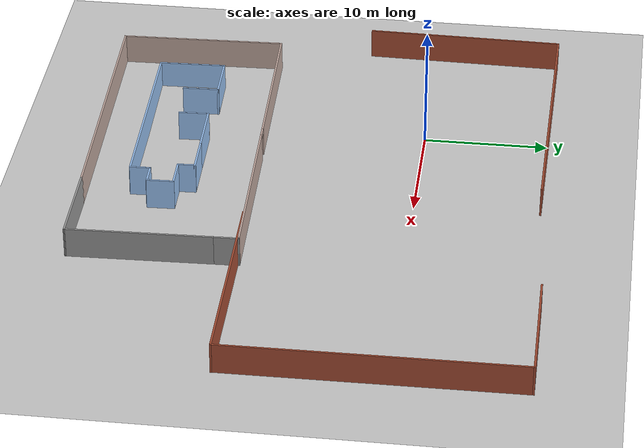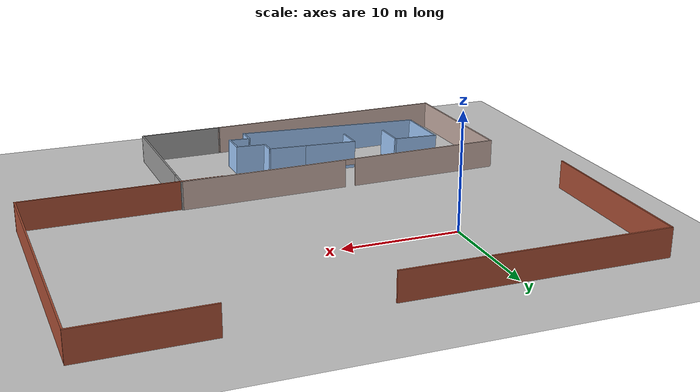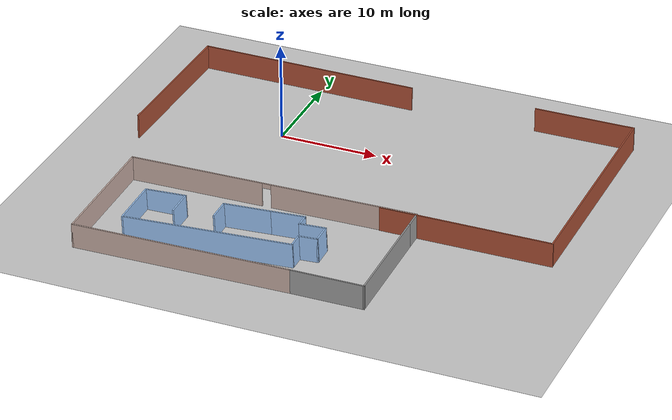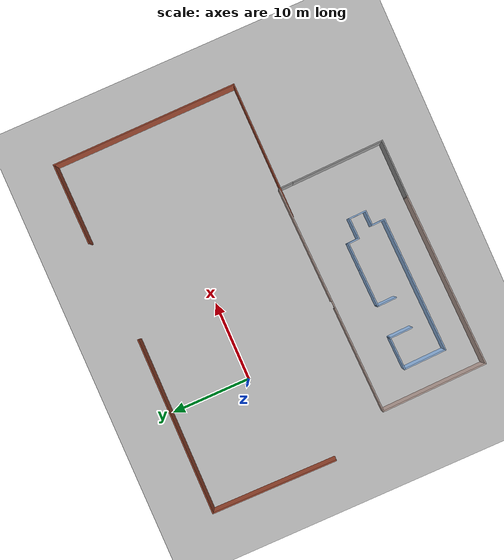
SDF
<sdf version="1.7">
 <world name="default">
  <light name="sun" type="directional">
   <pose>0 0 10 0 -0 0</pose>
   <diffuse>0.8 0.8 0.8 1</diffuse>
   <specular>0.2 0.2 0.2 1</specular>
   <attenuation>
    <range>1000</range>
    <constant>0.9</constant>
    <linear>0.01</linear>
    <quadratic>0.001</quadratic>
   </attenuation>
   <direction>-0.5 0.1 -0.9</direction>
   <spot><inner_angle>0</inner_angle><outer_angle>0</outer_angle><falloff>0</falloff></spot>
  </light>
  <model name="ground_plane">
   <static>1</static>
   <link name="link">
    <collision name="collision">
     <geometry><plane><normal>0 0 1</normal><size>100 100</size></plane></geometry>
     <surface><friction><ode><mu>100</mu><mu2>50</mu2></ode></friction></surface>
    </collision>
    <visual name="visual">
     <cast_shadows>0</cast_shadows>
     <geometry><plane><normal>0 0 1</normal><size>100 100</size></plane></geometry>
     <material>
      <script><uri>file://media/materials/scripts/gazebo.material</uri><name>Gazebo/Grey</name></script>
     </material>
    </visual>
   </link>
  </model>
  <gravity>0 0 -9.8</gravity>
  <magnetic_field>6e-06 2.3e-05 -4.2e-05</magnetic_field>
  <atmosphere type="adiabatic"/>
  <physics type="ode">
   <max_step_size>0.001</max_step_size>
   <real_time_factor>1</real_time_factor>
   <real_time_update_rate>1000</real_time_update_rate>
  </physics>
  <scene><ambient>0.4 0.4 0.4 1</ambient><background>0.7 0.7 0.7 1</background><shadows>1</shadows></scene>
  <audio><device>default</device></audio>
  <spherical_coordinates>
   <surface_model>EARTH_WGS84</surface_model>
   <latitude_deg>0</latitude_deg>
   <longitude_deg>0</longitude_deg>
   <elevation>0</elevation>
   <heading_deg>0</heading_deg>
  </spherical_coordinates>
  <model name="border2">
   <pose>-5.97404 2.17635 -3e-06 -5.3e-05 0.007672 1.56383</pose>
   <link name="Wall_44">
    <collision name="Wall_44_Collision">
     <geometry><box><size>16 0.15 2.5</size></box></geometry>
     <pose>0 0 1.25 0 -0 0</pose>
    </collision>
    <visual name="Wall_44_Visual">
     <pose>0 0 1.25 0 -0 0</pose>
     <geometry><box><size>16 0.15 2.5</size></box></geometry>
     <material>
      <script><uri>file://media/materials/scripts/gazebo.material</uri><name>Gazebo/Bricks</name></script>
      <ambient>1 1 1 1</ambient>
     </material>
     <meta><layer>0</layer></meta>
    </visual>
    <pose>-1e-06 6.74922 0 0 -0 0</pose>
   </link>
   <link name="Wall_46">
    <collision name="Wall_46_Collision">
     <geometry><box><size>22.5 0.15 2.5</size></box></geometry>
     <pose>0 0 1.25 0 -0 0</pose>
    </collision>
    <visual name="Wall_46_Visual">
     <pose>0 0 1.25 0 -0 0</pose>
     <geometry><box><size>22.5 0.15 2.5</size></box></geometry>
     <material>
      <script><uri>file://media/materials/scripts/gazebo.material</uri><name>Gazebo/Bricks</name></script>
      <ambient>1 1 1 1</ambient>
     </material>
     <meta><layer>0</layer></meta>
    </visual>
    <pose>7.925 -4.42578 0 0 -0 -1.5708</pose>
   </link>
   <static>1</static>
  </model>
  <model name="border6">
   <pose>4.94819 -19.5671 3e-06 -0.002183 -0.001014 -3.1186</pose>
   <link name="Wall_58">
    <collision name="Wall_58_Collision">
     <geometry><box><size>22 0.15 2.5</size></box></geometry>
     <pose>0 0 1.25 0 -0 0</pose>
    </collision>
    <visual name="Wall_58_Visual">
     <pose>0 0 1.25 0 -0 0</pose>
     <geometry><box><size>22 0.15 2.5</size></box></geometry>
     <material>
      <script><uri>file://media/materials/scripts/gazebo.material</uri><name>Gazebo/Grey</name></script>
      <ambient>0.760784 0.662745 0.627451 1</ambient>
     </material>
     <meta><layer>0</layer></meta>
    </visual>
    <pose>3.62551 6.62449 0 0 -0 0</pose>
   </link>
   <link name="Wall_59">
    <collision name="Wall_59_Collision">
     <geometry><box><size>13.5 0.15 2.5</size></box></geometry>
     <pose>0 0 1.25 0 -0 0</pose>
    </collision>
    <visual name="Wall_59_Visual">
     <pose>0 0 1.25 0 -0 0</pose>
     <geometry><box><size>13.5 0.15 2.5</size></box></geometry>
     <material>
      <script><uri>file://media/materials/scripts/gazebo.material</uri><name>Gazebo/Grey</name></script>
      <ambient>0.760784 0.662745 0.627451 1</ambient>
     </material>
     <meta><layer>0</layer></meta>
    </visual>
    <pose>14.5505 -0.050513 0 0 -0 -1.5708</pose>
   </link>
   <link name="Wall_60">
    <pose>0.000514 -6.72551 0 0 -0 3.14159</pose>
    <visual name="Wall_60_Visual_0">
     <pose>-7.843 0 1.25 0 -0 0</pose>
     <geometry><box><size>13.564 0.15 2.5</size></box></geometry>
     <material>
      <script><uri>file://media/materials/scripts/gazebo.material</uri><name>Gazebo/Grey</name></script>
      <ambient>0.760784 0.662745 0.627451 1</ambient>
     </material>
     <meta><layer>0</layer></meta>
    </visual>
    <collision name="Wall_60_Collision_0">
     <geometry><box><size>13.564 0.15 2.5</size></box></geometry>
     <pose>-7.843 0 1.25 0 -0 0</pose>
    </collision>
    <visual name="Wall_60_Visual_1">
     <pose>7.232 0 1.25 0 -0 0</pose>
     <geometry><box><size>14.786 0.15 2.5</size></box></geometry>
     <material>
      <script><uri>file://media/materials/scripts/gazebo.material</uri><name>Gazebo/Grey</name></script>
      <ambient>0.760784 0.662745 0.627451 1</ambient>
     </material>
     <meta><layer>0</layer></meta>
    </visual>
    <collision name="Wall_60_Collision_1">
     <geometry><box><size>14.786 0.15 2.5</size></box></geometry>
     <pose>7.232 0 1.25 0 -0 0</pose>
    </collision>
    <visual name="Wall_60_Visual_2">
     <pose>-0.611005 0 2.25 0 -0 0</pose>
     <geometry><box><size>0.9 0.15 0.5</size></box></geometry>
     <material>
      <script><uri>file://media/materials/scripts/gazebo.material</uri><name>Gazebo/Grey</name></script>
      <ambient>0.760784 0.662745 0.627451 1</ambient>
     </material>
     <meta><layer>0</layer></meta>
    </visual>
    <collision name="Wall_60_Collision_2">
     <geometry><box><size>0.9 0.15 0.5</size></box></geometry>
     <pose>-0.611005 0 2.25 0 -0 0</pose>
    </collision>
   </link>
   <link name="Wall_62">
    <collision name="Wall_62_Collision">
     <geometry><box><size>2 0.15 2.5</size></box></geometry>
     <pose>0 0 1.25 0 -0 0</pose>
    </collision>
    <visual name="Wall_62_Visual">
     <pose>0 0 1.25 0 -0 0</pose>
     <geometry><box><size>2 0.15 2.5</size></box></geometry>
     <material>
      <script><uri>file://media/materials/scripts/gazebo.material</uri><name>Gazebo/Grey</name></script>
      <ambient>1 1 1 1</ambient>
     </material>
     <meta><layer>0</layer></meta>
    </visual>
    <pose>-14.5495 -5.80051 0 0 -0 1.5708</pose>
   </link>
   <link name="Wall_63">
    <collision name="Wall_63_Collision">
     <geometry><box><size>11.75 0.15 2.5</size></box></geometry>
     <pose>0 0 1.25 0 -0 0</pose>
    </collision>
    <visual name="Wall_63_Visual">
     <pose>0 0 1.25 0 -0 0</pose>
     <geometry><box><size>11.75 0.15 2.5</size></box></geometry>
     <material>
      <script><uri>file://media/materials/scripts/gazebo.material</uri><name>Gazebo/Grey</name></script>
      <ambient>1 1 1 1</ambient>
     </material>
     <meta><layer>0</layer></meta>
    </visual>
    <pose>-14.5495 0.924487 0 0 -0 1.5708</pose>
   </link>
   <link name="Wall_64">
    <collision name="Wall_64_Collision">
     <geometry><box><size>7.40069 0.15 2.5</size></box></geometry>
     <pose>0 0 1.25 0 -0 0</pose>
    </collision>
    <visual name="Wall_64_Visual">
     <pose>0 0 1.25 0 -0 0</pose>
     <geometry><box><size>7.40069 0.15 2.5</size></box></geometry>
     <material>
      <script><uri>file://media/materials/scripts/gazebo.material</uri><name>Gazebo/Grey</name></script>
      <ambient>1 1 1 1</ambient>
     </material>
     <meta><layer>0</layer></meta>
    </visual>
    <pose>-10.9245 6.67449 0 0 -0 -0.013792</pose>
   </link>
   <static>1</static>
  </model>
  <model name="blah3">
   <pose>3.40453 -20.2251 1e-06 0 0.039599 -3.11241</pose>
   <link name="Wall_0">
    <collision name="Wall_0_Collision">
     <geometry><box><size>17.25 0.15 2.5</size></box></geometry>
     <pose>0 0 1.25 0 -0 0</pose>
    </collision>
    <visual name="Wall_0_Visual">
     <pose>0 0 1.25 0 -0 0</pose>
     <geometry><box><size>17.25 0.15 2.5</size></box></geometry>
     <material>
      <script><uri>file://media/materials/scripts/gazebo.material</uri><name>Gazebo/Grey</name></script>
      <ambient>0.6 0.756863 0.945098 1</ambient>
     </material>
     <meta><layer>0</layer></meta>
    </visual>
    <pose>0.925 2.39145 0 0 -0 0</pose>
   </link>
   <link name="Wall_1">
    <collision name="Wall_1_Collision">
     <geometry><box><size>5.5 0.15 2.5</size></box></geometry>
     <pose>0 0 1.25 0 -0 0</pose>
    </collision>
    <visual name="Wall_1_Visual">
     <pose>0 0 1.25 0 -0 0</pose>
     <geometry><box><size>5.5 0.15 2.5</size></box></geometry>
     <material>
      <script><uri>file://media/materials/scripts/gazebo.material</uri><name>Gazebo/Grey</name></script>
      <ambient>0.6 0.756863 0.945098 1</ambient>
     </material>
     <meta><layer>0</layer></meta>
    </visual>
    <pose>9.475 -0.283549 0 0 -0 -1.5708</pose>
   </link>
   <link name="Wall_10">
    <collision name="Wall_10_Collision">
     <geometry><box><size>2.75 0.15 2.5</size></box></geometry>
     <pose>0 0 1.25 0 -0 0</pose>
    </collision>
    <visual name="Wall_10_Visual">
     <pose>0 0 1.25 0 -0 0</pose>
     <geometry><box><size>2.75 0.15 2.5</size></box></geometry>
     <material>
      <script><uri>file://media/materials/scripts/gazebo.material</uri><name>Gazebo/Grey</name></script>
      <ambient>0.6 0.756863 0.945098 1</ambient>
     </material>
     <meta><layer>0</layer></meta>
    </visual>
    <pose>-8.175 -1.30855 0 0 -0 0</pose>
   </link>
   <link name="Wall_11">
    <collision name="Wall_11_Collision">
     <geometry><box><size>1.5 0.15 2.5</size></box></geometry>
     <pose>0 0 1.25 0 -0 0</pose>
    </collision>
    <visual name="Wall_11_Visual">
     <pose>0 0 1.25 0 -0 0</pose>
     <geometry><box><size>1.5 0.15 2.5</size></box></geometry>
     <material>
      <script><uri>file://media/materials/scripts/gazebo.material</uri><name>Gazebo/Grey</name></script>
      <ambient>0.6 0.756863 0.945098 1</ambient>
     </material>
     <meta><layer>0</layer></meta>
    </visual>
    <pose>-6.875 -1.98355 0 0 -0 -1.5708</pose>
   </link>
   <link name="Wall_12">
    <collision name="Wall_12_Collision">
     <geometry><box><size>3.5 0.15 2.5</size></box></geometry>
     <pose>0 0 1.25 0 -0 0</pose>
    </collision>
    <visual name="Wall_12_Visual">
     <pose>0 0 1.25 0 -0 0</pose>
     <geometry><box><size>3.5 0.15 2.5</size></box></geometry>
     <material>
      <script><uri>file://media/materials/scripts/gazebo.material</uri><name>Gazebo/Grey</name></script>
      <ambient>0.6 0.756863 0.945098 1</ambient>
     </material>
     <meta><layer>0</layer></meta>
    </visual>
    <pose>-5.2 -2.65855 0 0 -0 0</pose>
   </link>
   <link name="Wall_13">
    <collision name="Wall_13_Collision">
     <geometry><box><size>5 0.15 2.5</size></box></geometry>
     <pose>0 0 1.25 0 -0 0</pose>
    </collision>
    <visual name="Wall_13_Visual">
     <pose>0 0 1.25 0 -0 0</pose>
     <geometry><box><size>5 0.15 2.5</size></box></geometry>
     <material>
      <script><uri>file://media/materials/scripts/gazebo.material</uri><name>Gazebo/Grey</name></script>
      <ambient>0.6 0.756863 0.945098 1</ambient>
     </material>
     <meta><layer>0</layer></meta>
    </visual>
    <pose>-1.1 -2.65855 0 0 -0 0</pose>
   </link>
   <link name="Wall_14">
    <collision name="Wall_14_Collision">
     <geometry><box><size>2.5 0.15 2.5</size></box></geometry>
     <pose>0 0 1.25 0 -0 0</pose>
    </collision>
    <visual name="Wall_14_Visual">
     <pose>0 0 1.25 0 -0 0</pose>
     <geometry><box><size>2.5 0.15 2.5</size></box></geometry>
     <material>
      <script><uri>file://media/materials/scripts/gazebo.material</uri><name>Gazebo/Grey</name></script>
      <ambient>0.6 0.756863 0.945098 1</ambient>
     </material>
     <meta><layer>0</layer></meta>
    </visual>
    <pose>1.325 -1.48355 0 0 -0 1.5708</pose>
   </link>
   <link name="Wall_2">
    <collision name="Wall_2_Collision">
     <geometry><box><size>4.25 0.15 2.5</size></box></geometry>
     <pose>0 0 1.25 0 -0 0</pose>
    </collision>
    <visual name="Wall_2_Visual">
     <pose>0 0 1.25 0 -0 0</pose>
     <geometry><box><size>4.25 0.15 2.5</size></box></geometry>
     <material>
      <script><uri>file://media/materials/scripts/gazebo.material</uri><name>Gazebo/Grey</name></script>
      <ambient>0.6 0.756863 0.945098 1</ambient>
     </material>
     <meta><layer>0</layer></meta>
    </visual>
    <pose>7.425 -2.95855 0 0 -0 3.14159</pose>
   </link>
   <link name="Wall_3">
    <collision name="Wall_3_Collision">
     <geometry><box><size>3 0.15 2.5</size></box></geometry>
     <pose>0 0 1.25 0 -0 0</pose>
    </collision>
    <visual name="Wall_3_Visual">
     <pose>0 0 1.25 0 -0 0</pose>
     <geometry><box><size>3 0.15 2.5</size></box></geometry>
     <material>
      <script><uri>file://media/materials/scripts/gazebo.material</uri><name>Gazebo/Grey</name></script>
      <ambient>0.6 0.756863 0.945098 1</ambient>
     </material>
     <meta><layer>0</layer></meta>
    </visual>
    <pose>5.375 -1.53355 0 0 -0 1.5708</pose>
   </link>
   <link name="Wall_7">
    <collision name="Wall_7_Collision">
     <geometry><box><size>1.75 0.15 2.5</size></box></geometry>
     <pose>0 0 1.25 0 -0 0</pose>
    </collision>
    <visual name="Wall_7_Visual">
     <pose>0 0 1.25 0 -0 0</pose>
     <geometry><box><size>1.75 0.15 2.5</size></box></geometry>
     <material>
      <script><uri>file://media/materials/scripts/gazebo.material</uri><name>Gazebo/Grey</name></script>
      <ambient>0.6 0.756863 0.945098 1</ambient>
     </material>
     <meta><layer>0</layer></meta>
    </visual>
    <pose>-7.625 1.59145 0 0 -0 -1.5708</pose>
   </link>
   <link name="Wall_8">
    <collision name="Wall_8_Collision">
     <geometry><box><size>2 0.15 2.5</size></box></geometry>
     <pose>0 0 1.25 0 -0 0</pose>
    </collision>
    <visual name="Wall_8_Visual">
     <pose>0 0 1.25 0 -0 0</pose>
     <geometry><box><size>2 0.15 2.5</size></box></geometry>
     <material>
      <script><uri>file://media/materials/scripts/gazebo.material</uri><name>Gazebo/Grey</name></script>
      <ambient>0.6 0.756863 0.945098 1</ambient>
     </material>
     <meta><layer>0</layer></meta>
    </visual>
    <pose>-8.55 0.791451 0 0 -0 3.14159</pose>
   </link>
   <link name="Wall_9">
    <collision name="Wall_9_Collision">
     <geometry><box><size>2.25 0.15 2.5</size></box></geometry>
     <pose>0 0 1.25 0 -0 0</pose>
    </collision>
    <visual name="Wall_9_Visual">
     <pose>0 0 1.25 0 -0 0</pose>
     <geometry><box><size>2.25 0.15 2.5</size></box></geometry>
     <material>
      <script><uri>file://media/materials/scripts/gazebo.material</uri><name>Gazebo/Grey</name></script>
      <ambient>0.6 0.756863 0.945098 1</ambient>
     </material>
     <meta><layer>0</layer></meta>
    </visual>
    <pose>-9.475 -0.258549 0 0 -0 -1.5708</pose>
   </link>
   <static>1</static>
  </model>
  <model name="blah7">
   <pose>10.409 18.8593 0 0 -0 1.57726</pose>
   <link name="Wall_24">
    <collision name="Wall_24_Collision">
     <geometry><box><size>17.25 0.15 2.5</size></box></geometry>
     <pose>0 0 1.25 0 -0 0</pose>
    </collision>
    <visual name="Wall_24_Visual">
     <pose>0 0 1.25 0 -0 0</pose>
     <geometry><box><size>17.25 0.15 2.5</size></box></geometry>
     <material>
      <script><uri>file://media/materials/scripts/gazebo.material</uri><name>Gazebo/Bricks</name></script>
      <ambient>1 1 1 1</ambient>
     </material>
     <meta><layer>0</layer></meta>
    </visual>
    <pose>-31.5605 -13.6523 0 0 -0 -1.5708</pose>
   </link>
   <link name="Wall_25">
    <collision name="Wall_25_Collision">
     <geometry><box><size>23.494 0.14 2.5</size></box></geometry>
     <pose>0 0 1.25 0 -0 0</pose>
    </collision>
    <visual name="Wall_25_Visual">
     <pose>0 0 1.25 0 -0 0</pose>
     <geometry><box><size>23.494 0.14 2.5</size></box></geometry>
     <material>
      <script><uri>file://media/materials/scripts/gazebo.material</uri><name>Gazebo/Bricks</name></script>
      <ambient>1 1 1 1</ambient>
     </material>
     <meta><layer>0</layer></meta>
    </visual>
    <pose>-19.8835 -22.2023 0 0 -0 0</pose>
   </link>
   <link name="Wall_30">
    <collision name="Wall_30_Collision">
     <geometry><box><size>10.25 0.15 2.5</size></box></geometry>
     <pose>0 0 1.25 0 -0 0</pose>
    </collision>
    <visual name="Wall_30_Visual">
     <pose>0 0 1.25 0 -0 0</pose>
     <geometry><box><size>10.25 0.15 2.5</size></box></geometry>
     <material>
      <script><uri>file://media/materials/scripts/gazebo.material</uri><name>Gazebo/Bricks</name></script>
      <ambient>1 1 1 1</ambient>
     </material>
     <meta><layer>0</layer></meta>
    </visual>
    <pose>-8.20654 -17.1523 0 0 -0 1.5708</pose>
   </link>
   <static>1</static>
  </model>
 </world>
</sdf>
